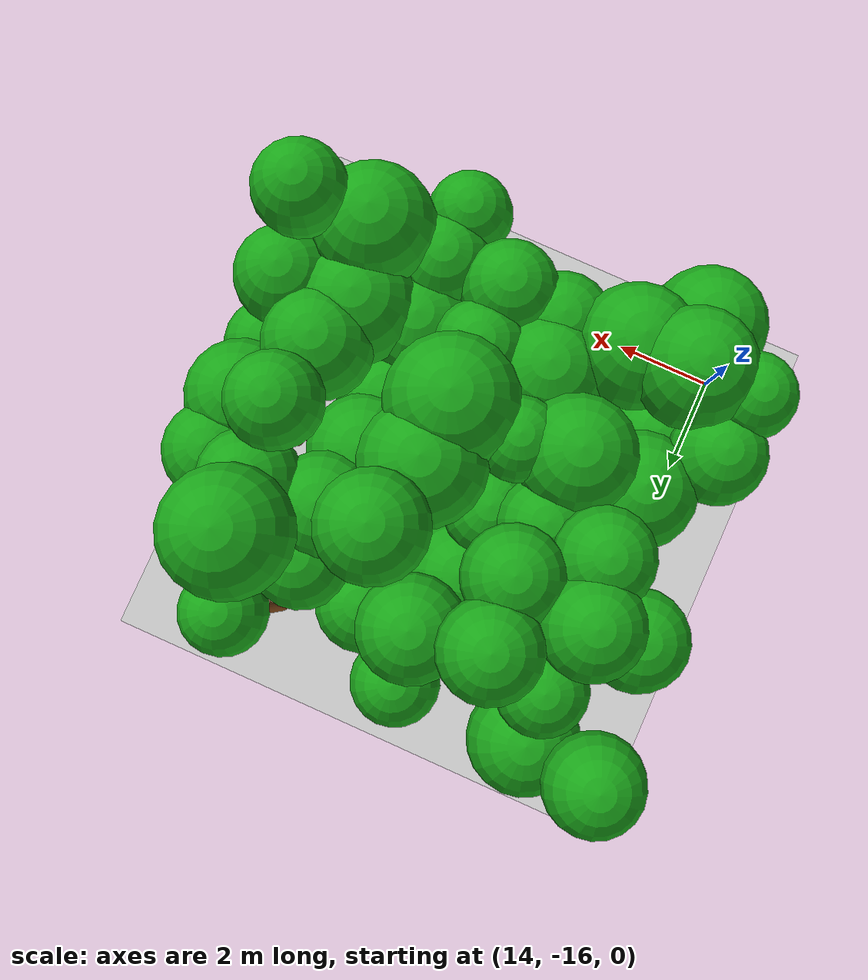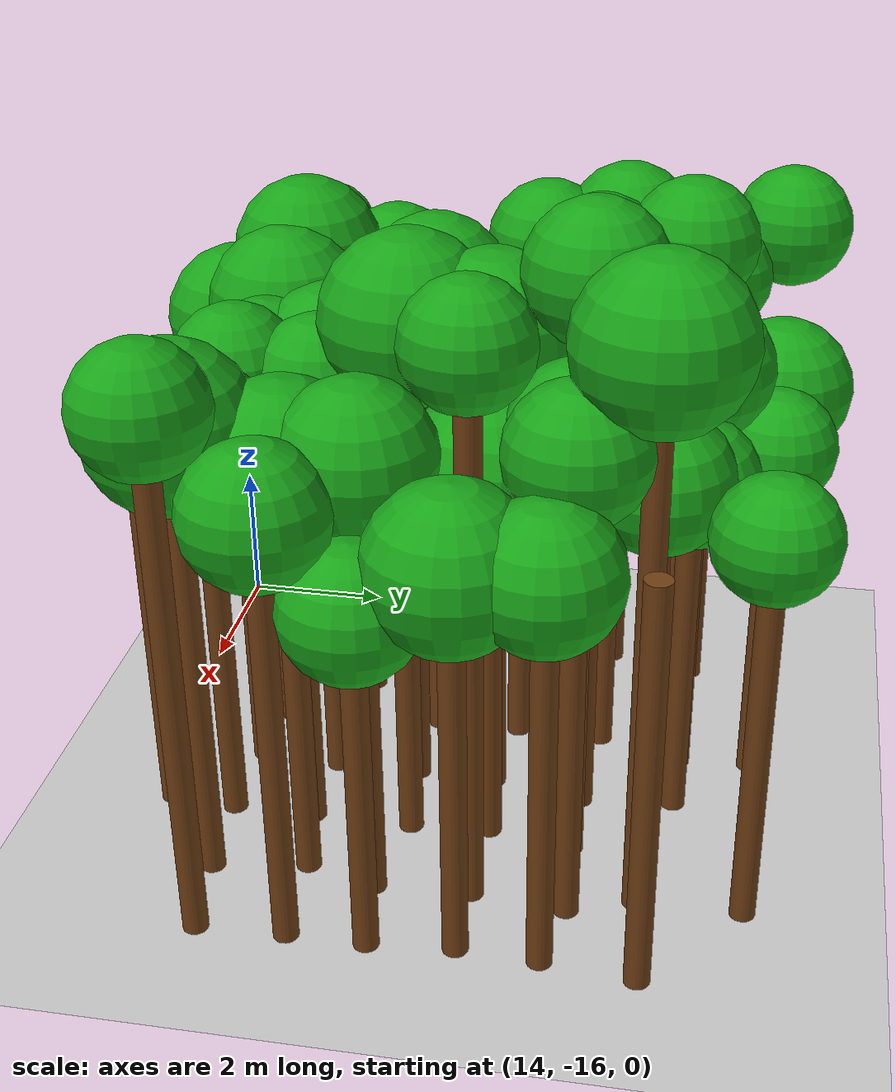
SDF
<sdf version="1.6">
 <world name="forest_world">
  <include><uri>model://sun</uri></include>
  <include><uri>model://ground_plane</uri></include>
  <model name="tree_2191_trunk">
   <static>true</static>
   <pose>14.03 -14.54 2.84 0 0 0</pose>
   <link name="link">
    <collision name="collision">
     <geometry><cylinder><radius>0.16</radius><length>5.68</length></cylinder></geometry>
    </collision>
    <visual name="visual">
     <geometry><cylinder><radius>0.16</radius><length>5.68</length></cylinder></geometry>
     <material><ambient>0.35 0.20 0.05 1</ambient><diffuse>0.45 0.25 0.08 1</diffuse></material>
    </visual>
   </link>
  </model>
  <model name="tree_2191_leaf">
   <static>true</static>
   <pose>14.03 -14.54 6.11 0 0 0</pose>
   <link name="link">
    <collision name="collision"><geometry><sphere><radius>0.72</radius></sphere></geometry></collision>
    <visual name="visual">
     <geometry><sphere><radius>0.72</radius></sphere></geometry>
     <material><ambient>0.05 0.45 0.05 1</ambient><diffuse>0.10 0.65 0.10 1</diffuse></material>
    </visual>
   </link>
  </model>
  <model name="tree_2192_trunk">
   <static>true</static>
   <pose>14.13 -13.49 2.64 0 0 0</pose>
   <link name="link">
    <collision name="collision">
     <geometry><cylinder><radius>0.16</radius><length>5.28</length></cylinder></geometry>
    </collision>
    <visual name="visual">
     <geometry><cylinder><radius>0.16</radius><length>5.28</length></cylinder></geometry>
     <material><ambient>0.35 0.20 0.05 1</ambient><diffuse>0.45 0.25 0.08 1</diffuse></material>
    </visual>
   </link>
  </model>
  <model name="tree_2192_leaf">
   <static>true</static>
   <pose>14.13 -13.49 5.78 0 0 0</pose>
   <link name="link">
    <collision name="collision"><geometry><sphere><radius>0.83</radius></sphere></geometry></collision>
    <visual name="visual">
     <geometry><sphere><radius>0.83</radius></sphere></geometry>
     <material><ambient>0.05 0.45 0.05 1</ambient><diffuse>0.10 0.65 0.10 1</diffuse></material>
    </visual>
   </link>
  </model>
  <model name="tree_2195_trunk">
   <static>true</static>
   <pose>14.17 -10.25 2.77 0 0 0</pose>
   <link name="link">
    <collision name="collision">
     <geometry><cylinder><radius>0.16</radius><length>5.55</length></cylinder></geometry>
    </collision>
    <visual name="visual">
     <geometry><cylinder><radius>0.16</radius><length>5.55</length></cylinder></geometry>
     <material><ambient>0.35 0.20 0.05 1</ambient><diffuse>0.45 0.25 0.08 1</diffuse></material>
    </visual>
   </link>
  </model>
  <model name="tree_2195_leaf">
   <static>true</static>
   <pose>14.17 -10.25 6.05 0 0 0</pose>
   <link name="link">
    <collision name="collision"><geometry><sphere><radius>0.84</radius></sphere></geometry></collision>
    <visual name="visual">
     <geometry><sphere><radius>0.84</radius></sphere></geometry>
     <material><ambient>0.05 0.45 0.05 1</ambient><diffuse>0.10 0.65 0.10 1</diffuse></material>
    </visual>
   </link>
  </model>
  <model name="tree_2197_leaf">
   <static>true</static>
   <pose>14.01 -8.01 6.59 0 0 0</pose>
   <link name="link">
    <collision name="collision"><geometry><sphere><radius>0.81</radius></sphere></geometry></collision>
    <visual name="visual">
     <geometry><sphere><radius>0.81</radius></sphere></geometry>
     <material><ambient>0.05 0.45 0.05 1</ambient><diffuse>0.10 0.65 0.10 1</diffuse></material>
    </visual>
   </link>
  </model>
  <model name="tree_2245_trunk">
   <static>true</static>
   <pose>15.03 -15.58 2.28 0 0 0</pose>
   <link name="link">
    <collision name="collision">
     <geometry><cylinder><radius>0.16</radius><length>4.55</length></cylinder></geometry>
    </collision>
    <visual name="visual">
     <geometry><cylinder><radius>0.16</radius><length>4.55</length></cylinder></geometry>
     <material><ambient>0.35 0.20 0.05 1</ambient><diffuse>0.45 0.25 0.08 1</diffuse></material>
    </visual>
   </link>
  </model>
  <model name="tree_2245_leaf">
   <static>true</static>
   <pose>15.03 -15.58 5.17 0 0 0</pose>
   <link name="link">
    <collision name="collision"><geometry><sphere><radius>1.02</radius></sphere></geometry></collision>
    <visual name="visual">
     <geometry><sphere><radius>1.02</radius></sphere></geometry>
     <material><ambient>0.05 0.45 0.05 1</ambient><diffuse>0.10 0.65 0.10 1</diffuse></material>
    </visual>
   </link>
  </model>
  <model name="tree_2246_trunk">
   <static>true</static>
   <pose>15.04 -14.54 2.80 0 0 0</pose>
   <link name="link">
    <collision name="collision">
     <geometry><cylinder><radius>0.16</radius><length>5.61</length></cylinder></geometry>
    </collision>
    <visual name="visual">
     <geometry><cylinder><radius>0.16</radius><length>5.61</length></cylinder></geometry>
     <material><ambient>0.35 0.20 0.05 1</ambient><diffuse>0.45 0.25 0.08 1</diffuse></material>
    </visual>
   </link>
  </model>
  <model name="tree_2246_leaf">
   <static>true</static>
   <pose>15.04 -14.54 6.22 0 0 0</pose>
   <link name="link">
    <collision name="collision"><geometry><sphere><radius>1.01</radius></sphere></geometry></collision>
    <visual name="visual">
     <geometry><sphere><radius>1.01</radius></sphere></geometry>
     <material><ambient>0.05 0.45 0.05 1</ambient><diffuse>0.10 0.65 0.10 1</diffuse></material>
    </visual>
   </link>
  </model>
  <model name="tree_2247_trunk">
   <static>true</static>
   <pose>15.13 -13.49 2.24 0 0 0</pose>
   <link name="link">
    <collision name="collision">
     <geometry><cylinder><radius>0.16</radius><length>4.48</length></cylinder></geometry>
    </collision>
    <visual name="visual">
     <geometry><cylinder><radius>0.16</radius><length>4.48</length></cylinder></geometry>
     <material><ambient>0.35 0.20 0.05 1</ambient><diffuse>0.45 0.25 0.08 1</diffuse></material>
    </visual>
   </link>
  </model>
  <model name="tree_2247_leaf">
   <static>true</static>
   <pose>15.13 -13.49 5.01 0 0 0</pose>
   <link name="link">
    <collision name="collision"><geometry><sphere><radius>0.88</radius></sphere></geometry></collision>
    <visual name="visual">
     <geometry><sphere><radius>0.88</radius></sphere></geometry>
     <material><ambient>0.05 0.45 0.05 1</ambient><diffuse>0.10 0.65 0.10 1</diffuse></material>
    </visual>
   </link>
  </model>
  <model name="tree_2248_trunk">
   <static>true</static>
   <pose>15.05 -12.49 2.48 0 0 0</pose>
   <link name="link">
    <collision name="collision">
     <geometry><cylinder><radius>0.16</radius><length>4.95</length></cylinder></geometry>
    </collision>
    <visual name="visual">
     <geometry><cylinder><radius>0.16</radius><length>4.95</length></cylinder></geometry>
     <material><ambient>0.35 0.20 0.05 1</ambient><diffuse>0.45 0.25 0.08 1</diffuse></material>
    </visual>
   </link>
  </model>
  <model name="tree_2248_leaf">
   <static>true</static>
   <pose>15.05 -12.49 5.55 0 0 0</pose>
   <link name="link">
    <collision name="collision"><geometry><sphere><radius>1.00</radius></sphere></geometry></collision>
    <visual name="visual">
     <geometry><sphere><radius>1.00</radius></sphere></geometry>
     <material><ambient>0.05 0.45 0.05 1</ambient><diffuse>0.10 0.65 0.10 1</diffuse></material>
    </visual>
   </link>
  </model>
  <model name="tree_2249_trunk">
   <static>true</static>
   <pose>15.21 -11.17 3.05 0 0 0</pose>
   <link name="link">
    <collision name="collision">
     <geometry><cylinder><radius>0.16</radius><length>6.10</length></cylinder></geometry>
    </collision>
    <visual name="visual">
     <geometry><cylinder><radius>0.16</radius><length>6.10</length></cylinder></geometry>
     <material><ambient>0.35 0.20 0.05 1</ambient><diffuse>0.45 0.25 0.08 1</diffuse></material>
    </visual>
   </link>
  </model>
  <model name="tree_2249_leaf">
   <static>true</static>
   <pose>15.21 -11.17 6.60 0 0 0</pose>
   <link name="link">
    <collision name="collision"><geometry><sphere><radius>0.83</radius></sphere></geometry></collision>
    <visual name="visual">
     <geometry><sphere><radius>0.83</radius></sphere></geometry>
     <material><ambient>0.05 0.45 0.05 1</ambient><diffuse>0.10 0.65 0.10 1</diffuse></material>
    </visual>
   </link>
  </model>
  <model name="tree_2250_trunk">
   <static>true</static>
   <pose>14.99 -10.14 3.14 0 0 0</pose>
   <link name="link">
    <collision name="collision">
     <geometry><cylinder><radius>0.16</radius><length>6.29</length></cylinder></geometry>
    </collision>
    <visual name="visual">
     <geometry><cylinder><radius>0.16</radius><length>6.29</length></cylinder></geometry>
     <material><ambient>0.35 0.20 0.05 1</ambient><diffuse>0.45 0.25 0.08 1</diffuse></material>
    </visual>
   </link>
  </model>
  <model name="tree_2250_leaf">
   <static>true</static>
   <pose>14.99 -10.14 6.80 0 0 0</pose>
   <link name="link">
    <collision name="collision"><geometry><sphere><radius>0.85</radius></sphere></geometry></collision>
    <visual name="visual">
     <geometry><sphere><radius>0.85</radius></sphere></geometry>
     <material><ambient>0.05 0.45 0.05 1</ambient><diffuse>0.10 0.65 0.10 1</diffuse></material>
    </visual>
   </link>
  </model>
  <model name="tree_2251_trunk">
   <static>true</static>
   <pose>15.25 -8.96 2.91 0 0 0</pose>
   <link name="link">
    <collision name="collision">
     <geometry><cylinder><radius>0.16</radius><length>5.82</length></cylinder></geometry>
    </collision>
    <visual name="visual">
     <geometry><cylinder><radius>0.16</radius><length>5.82</length></cylinder></geometry>
     <material><ambient>0.35 0.20 0.05 1</ambient><diffuse>0.45 0.25 0.08 1</diffuse></material>
    </visual>
   </link>
  </model>
  <model name="tree_2251_leaf">
   <static>true</static>
   <pose>15.25 -8.96 6.27 0 0 0</pose>
   <link name="link">
    <collision name="collision"><geometry><sphere><radius>0.75</radius></sphere></geometry></collision>
    <visual name="visual">
     <geometry><sphere><radius>0.75</radius></sphere></geometry>
     <material><ambient>0.05 0.45 0.05 1</ambient><diffuse>0.10 0.65 0.10 1</diffuse></material>
    </visual>
   </link>
  </model>
  <model name="tree_2252_trunk">
   <static>true</static>
   <pose>15.05 -7.98 2.04 0 0 0</pose>
   <link name="link">
    <collision name="collision">
     <geometry><cylinder><radius>0.16</radius><length>4.07</length></cylinder></geometry>
    </collision>
    <visual name="visual">
     <geometry><cylinder><radius>0.16</radius><length>4.07</length></cylinder></geometry>
     <material><ambient>0.35 0.20 0.05 1</ambient><diffuse>0.45 0.25 0.08 1</diffuse></material>
    </visual>
   </link>
  </model>
  <model name="tree_2252_leaf">
   <static>true</static>
   <pose>15.05 -7.98 4.65 0 0 0</pose>
   <link name="link">
    <collision name="collision"><geometry><sphere><radius>0.97</radius></sphere></geometry></collision>
    <visual name="visual">
     <geometry><sphere><radius>0.97</radius></sphere></geometry>
     <material><ambient>0.05 0.45 0.05 1</ambient><diffuse>0.10 0.65 0.10 1</diffuse></material>
    </visual>
   </link>
  </model>
  <model name="tree_2301_trunk">
   <static>true</static>
   <pose>16.02 -14.59 2.59 0 0 0</pose>
   <link name="link">
    <collision name="collision">
     <geometry><cylinder><radius>0.16</radius><length>5.18</length></cylinder></geometry>
    </collision>
    <visual name="visual">
     <geometry><cylinder><radius>0.16</radius><length>5.18</length></cylinder></geometry>
     <material><ambient>0.35 0.20 0.05 1</ambient><diffuse>0.45 0.25 0.08 1</diffuse></material>
    </visual>
   </link>
  </model>
  <model name="tree_2301_leaf">
   <static>true</static>
   <pose>16.02 -14.59 5.81 0 0 0</pose>
   <link name="link">
    <collision name="collision"><geometry><sphere><radius>1.05</radius></sphere></geometry></collision>
    <visual name="visual">
     <geometry><sphere><radius>1.05</radius></sphere></geometry>
     <material><ambient>0.05 0.45 0.05 1</ambient><diffuse>0.10 0.65 0.10 1</diffuse></material>
    </visual>
   </link>
  </model>
  <model name="tree_2302_trunk">
   <static>true</static>
   <pose>16.33 -13.49 2.12 0 0 0</pose>
   <link name="link">
    <collision name="collision">
     <geometry><cylinder><radius>0.16</radius><length>4.24</length></cylinder></geometry>
    </collision>
    <visual name="visual">
     <geometry><cylinder><radius>0.16</radius><length>4.24</length></cylinder></geometry>
     <material><ambient>0.35 0.20 0.05 1</ambient><diffuse>0.45 0.25 0.08 1</diffuse></material>
    </visual>
   </link>
  </model>
  <model name="tree_2302_leaf">
   <static>true</static>
   <pose>16.33 -13.49 4.66 0 0 0</pose>
   <link name="link">
    <collision name="collision"><geometry><sphere><radius>0.70</radius></sphere></geometry></collision>
    <visual name="visual">
     <geometry><sphere><radius>0.70</radius></sphere></geometry>
     <material><ambient>0.05 0.45 0.05 1</ambient><diffuse>0.10 0.65 0.10 1</diffuse></material>
    </visual>
   </link>
  </model>
  <model name="tree_2303_trunk">
   <static>true</static>
   <pose>16.21 -12.51 2.83 0 0 0</pose>
   <link name="link">
    <collision name="collision">
     <geometry><cylinder><radius>0.16</radius><length>5.66</length></cylinder></geometry>
    </collision>
    <visual name="visual">
     <geometry><cylinder><radius>0.16</radius><length>5.66</length></cylinder></geometry>
     <material><ambient>0.35 0.20 0.05 1</ambient><diffuse>0.45 0.25 0.08 1</diffuse></material>
    </visual>
   </link>
  </model>
  <model name="tree_2303_leaf">
   <static>true</static>
   <pose>16.21 -12.51 6.25 0 0 0</pose>
   <link name="link">
    <collision name="collision"><geometry><sphere><radius>0.99</radius></sphere></geometry></collision>
    <visual name="visual">
     <geometry><sphere><radius>0.99</radius></sphere></geometry>
     <material><ambient>0.05 0.45 0.05 1</ambient><diffuse>0.10 0.65 0.10 1</diffuse></material>
    </visual>
   </link>
  </model>
  <model name="tree_2304_trunk">
   <static>true</static>
   <pose>16.22 -11.32 2.73 0 0 0</pose>
   <link name="link">
    <collision name="collision">
     <geometry><cylinder><radius>0.16</radius><length>5.47</length></cylinder></geometry>
    </collision>
    <visual name="visual">
     <geometry><cylinder><radius>0.16</radius><length>5.47</length></cylinder></geometry>
     <material><ambient>0.35 0.20 0.05 1</ambient><diffuse>0.45 0.25 0.08 1</diffuse></material>
    </visual>
   </link>
  </model>
  <model name="tree_2304_leaf">
   <static>true</static>
   <pose>16.22 -11.32 5.94 0 0 0</pose>
   <link name="link">
    <collision name="collision"><geometry><sphere><radius>0.80</radius></sphere></geometry></collision>
    <visual name="visual">
     <geometry><sphere><radius>0.80</radius></sphere></geometry>
     <material><ambient>0.05 0.45 0.05 1</ambient><diffuse>0.10 0.65 0.10 1</diffuse></material>
    </visual>
   </link>
  </model>
  <model name="tree_2305_trunk">
   <static>true</static>
   <pose>16.37 -10.35 3.18 0 0 0</pose>
   <link name="link">
    <collision name="collision">
     <geometry><cylinder><radius>0.16</radius><length>6.35</length></cylinder></geometry>
    </collision>
    <visual name="visual">
     <geometry><cylinder><radius>0.16</radius><length>6.35</length></cylinder></geometry>
     <material><ambient>0.35 0.20 0.05 1</ambient><diffuse>0.45 0.25 0.08 1</diffuse></material>
    </visual>
   </link>
  </model>
  <model name="tree_2305_leaf">
   <static>true</static>
   <pose>16.37 -10.35 6.85 0 0 0</pose>
   <link name="link">
    <collision name="collision"><geometry><sphere><radius>0.82</radius></sphere></geometry></collision>
    <visual name="visual">
     <geometry><sphere><radius>0.82</radius></sphere></geometry>
     <material><ambient>0.05 0.45 0.05 1</ambient><diffuse>0.10 0.65 0.10 1</diffuse></material>
    </visual>
   </link>
  </model>
  <model name="tree_2306_trunk">
   <static>true</static>
   <pose>16.25 -9.22 3.29 0 0 0</pose>
   <link name="link">
    <collision name="collision">
     <geometry><cylinder><radius>0.16</radius><length>6.58</length></cylinder></geometry>
    </collision>
    <visual name="visual">
     <geometry><cylinder><radius>0.16</radius><length>6.58</length></cylinder></geometry>
     <material><ambient>0.35 0.20 0.05 1</ambient><diffuse>0.45 0.25 0.08 1</diffuse></material>
    </visual>
   </link>
  </model>
  <model name="tree_2306_leaf">
   <static>true</static>
   <pose>16.25 -9.22 7.08 0 0 0</pose>
   <link name="link">
    <collision name="collision"><geometry><sphere><radius>0.83</radius></sphere></geometry></collision>
    <visual name="visual">
     <geometry><sphere><radius>0.83</radius></sphere></geometry>
     <material><ambient>0.05 0.45 0.05 1</ambient><diffuse>0.10 0.65 0.10 1</diffuse></material>
    </visual>
   </link>
  </model>
  <model name="tree_2356_trunk">
   <static>true</static>
   <pose>17.29 -14.52 2.48 0 0 0</pose>
   <link name="link">
    <collision name="collision">
     <geometry><cylinder><radius>0.16</radius><length>4.96</length></cylinder></geometry>
    </collision>
    <visual name="visual">
     <geometry><cylinder><radius>0.16</radius><length>4.96</length></cylinder></geometry>
     <material><ambient>0.35 0.20 0.05 1</ambient><diffuse>0.45 0.25 0.08 1</diffuse></material>
    </visual>
   </link>
  </model>
  <model name="tree_2356_leaf">
   <static>true</static>
   <pose>17.29 -14.52 5.48 0 0 0</pose>
   <link name="link">
    <collision name="collision"><geometry><sphere><radius>0.88</radius></sphere></geometry></collision>
    <visual name="visual">
     <geometry><sphere><radius>0.88</radius></sphere></geometry>
     <material><ambient>0.05 0.45 0.05 1</ambient><diffuse>0.10 0.65 0.10 1</diffuse></material>
    </visual>
   </link>
  </model>
  <model name="tree_2357_trunk">
   <static>true</static>
   <pose>17.18 -13.66 2.48 0 0 0</pose>
   <link name="link">
    <collision name="collision">
     <geometry><cylinder><radius>0.16</radius><length>4.97</length></cylinder></geometry>
    </collision>
    <visual name="visual">
     <geometry><cylinder><radius>0.16</radius><length>4.97</length></cylinder></geometry>
     <material><ambient>0.35 0.20 0.05 1</ambient><diffuse>0.45 0.25 0.08 1</diffuse></material>
    </visual>
   </link>
  </model>
  <model name="tree_2357_leaf">
   <static>true</static>
   <pose>17.18 -13.66 5.57 0 0 0</pose>
   <link name="link">
    <collision name="collision"><geometry><sphere><radius>1.01</radius></sphere></geometry></collision>
    <visual name="visual">
     <geometry><sphere><radius>1.01</radius></sphere></geometry>
     <material><ambient>0.05 0.45 0.05 1</ambient><diffuse>0.10 0.65 0.10 1</diffuse></material>
    </visual>
   </link>
  </model>
  <model name="tree_2358_trunk">
   <static>true</static>
   <pose>17.14 -12.35 2.99 0 0 0</pose>
   <link name="link">
    <collision name="collision">
     <geometry><cylinder><radius>0.16</radius><length>5.98</length></cylinder></geometry>
    </collision>
    <visual name="visual">
     <geometry><cylinder><radius>0.16</radius><length>5.98</length></cylinder></geometry>
     <material><ambient>0.35 0.20 0.05 1</ambient><diffuse>0.45 0.25 0.08 1</diffuse></material>
    </visual>
   </link>
  </model>
  <model name="tree_2358_leaf">
   <static>true</static>
   <pose>17.14 -12.35 6.40 0 0 0</pose>
   <link name="link">
    <collision name="collision"><geometry><sphere><radius>0.70</radius></sphere></geometry></collision>
    <visual name="visual">
     <geometry><sphere><radius>0.70</radius></sphere></geometry>
     <material><ambient>0.05 0.45 0.05 1</ambient><diffuse>0.10 0.65 0.10 1</diffuse></material>
    </visual>
   </link>
  </model>
  <model name="tree_2359_trunk">
   <static>true</static>
   <pose>17.12 -11.23 2.46 0 0 0</pose>
   <link name="link">
    <collision name="collision">
     <geometry><cylinder><radius>0.16</radius><length>4.91</length></cylinder></geometry>
    </collision>
    <visual name="visual">
     <geometry><cylinder><radius>0.16</radius><length>4.91</length></cylinder></geometry>
     <material><ambient>0.35 0.20 0.05 1</ambient><diffuse>0.45 0.25 0.08 1</diffuse></material>
    </visual>
   </link>
  </model>
  <model name="tree_2359_leaf">
   <static>true</static>
   <pose>17.12 -11.23 5.39 0 0 0</pose>
   <link name="link">
    <collision name="collision"><geometry><sphere><radius>0.79</radius></sphere></geometry></collision>
    <visual name="visual">
     <geometry><sphere><radius>0.79</radius></sphere></geometry>
     <material><ambient>0.05 0.45 0.05 1</ambient><diffuse>0.10 0.65 0.10 1</diffuse></material>
    </visual>
   </link>
  </model>
  <model name="tree_2360_trunk">
   <static>true</static>
   <pose>17.12 -10.07 2.02 0 0 0</pose>
   <link name="link">
    <collision name="collision">
     <geometry><cylinder><radius>0.16</radius><length>4.04</length></cylinder></geometry>
    </collision>
    <visual name="visual">
     <geometry><cylinder><radius>0.16</radius><length>4.04</length></cylinder></geometry>
     <material><ambient>0.35 0.20 0.05 1</ambient><diffuse>0.45 0.25 0.08 1</diffuse></material>
    </visual>
   </link>
  </model>
  <model name="tree_2360_leaf">
   <static>true</static>
   <pose>17.12 -10.07 4.63 0 0 0</pose>
   <link name="link">
    <collision name="collision"><geometry><sphere><radius>0.99</radius></sphere></geometry></collision>
    <visual name="visual">
     <geometry><sphere><radius>0.99</radius></sphere></geometry>
     <material><ambient>0.05 0.45 0.05 1</ambient><diffuse>0.10 0.65 0.10 1</diffuse></material>
    </visual>
   </link>
  </model>
  <model name="tree_2361_trunk">
   <static>true</static>
   <pose>17.48 -8.96 2.70 0 0 0</pose>
   <link name="link">
    <collision name="collision">
     <geometry><cylinder><radius>0.16</radius><length>5.40</length></cylinder></geometry>
    </collision>
    <visual name="visual">
     <geometry><cylinder><radius>0.16</radius><length>5.40</length></cylinder></geometry>
     <material><ambient>0.35 0.20 0.05 1</ambient><diffuse>0.45 0.25 0.08 1</diffuse></material>
    </visual>
   </link>
  </model>
  <model name="tree_2361_leaf">
   <static>true</static>
   <pose>17.48 -8.96 5.93 0 0 0</pose>
   <link name="link">
    <collision name="collision"><geometry><sphere><radius>0.90</radius></sphere></geometry></collision>
    <visual name="visual">
     <geometry><sphere><radius>0.90</radius></sphere></geometry>
     <material><ambient>0.05 0.45 0.05 1</ambient><diffuse>0.10 0.65 0.10 1</diffuse></material>
    </visual>
   </link>
  </model>
  <model name="tree_2362_trunk">
   <static>true</static>
   <pose>17.40 -7.99 2.22 0 0 0</pose>
   <link name="link">
    <collision name="collision">
     <geometry><cylinder><radius>0.16</radius><length>4.44</length></cylinder></geometry>
    </collision>
    <visual name="visual">
     <geometry><cylinder><radius>0.16</radius><length>4.44</length></cylinder></geometry>
     <material><ambient>0.35 0.20 0.05 1</ambient><diffuse>0.45 0.25 0.08 1</diffuse></material>
    </visual>
   </link>
  </model>
  <model name="tree_2362_leaf">
   <static>true</static>
   <pose>17.40 -7.99 4.90 0 0 0</pose>
   <link name="link">
    <collision name="collision"><geometry><sphere><radius>0.76</radius></sphere></geometry></collision>
    <visual name="visual">
     <geometry><sphere><radius>0.76</radius></sphere></geometry>
     <material><ambient>0.05 0.45 0.05 1</ambient><diffuse>0.10 0.65 0.10 1</diffuse></material>
    </visual>
   </link>
  </model>
  <model name="tree_2411_trunk">
   <static>true</static>
   <pose>18.27 -14.61 2.68 0 0 0</pose>
   <link name="link">
    <collision name="collision">
     <geometry><cylinder><radius>0.16</radius><length>5.37</length></cylinder></geometry>
    </collision>
    <visual name="visual">
     <geometry><cylinder><radius>0.16</radius><length>5.37</length></cylinder></geometry>
     <material><ambient>0.35 0.20 0.05 1</ambient><diffuse>0.45 0.25 0.08 1</diffuse></material>
    </visual>
   </link>
  </model>
  <model name="tree_2411_leaf">
   <static>true</static>
   <pose>18.27 -14.61 5.86 0 0 0</pose>
   <link name="link">
    <collision name="collision"><geometry><sphere><radius>0.82</radius></sphere></geometry></collision>
    <visual name="visual">
     <geometry><sphere><radius>0.82</radius></sphere></geometry>
     <material><ambient>0.05 0.45 0.05 1</ambient><diffuse>0.10 0.65 0.10 1</diffuse></material>
    </visual>
   </link>
  </model>
  <model name="tree_2412_trunk">
   <static>true</static>
   <pose>18.33 -13.54 2.68 0 0 0</pose>
   <link name="link">
    <collision name="collision">
     <geometry><cylinder><radius>0.16</radius><length>5.37</length></cylinder></geometry>
    </collision>
    <visual name="visual">
     <geometry><cylinder><radius>0.16</radius><length>5.37</length></cylinder></geometry>
     <material><ambient>0.35 0.20 0.05 1</ambient><diffuse>0.45 0.25 0.08 1</diffuse></material>
    </visual>
   </link>
  </model>
  <model name="tree_2412_leaf">
   <static>true</static>
   <pose>18.33 -13.54 5.84 0 0 0</pose>
   <link name="link">
    <collision name="collision"><geometry><sphere><radius>0.80</radius></sphere></geometry></collision>
    <visual name="visual">
     <geometry><sphere><radius>0.80</radius></sphere></geometry>
     <material><ambient>0.05 0.45 0.05 1</ambient><diffuse>0.10 0.65 0.10 1</diffuse></material>
    </visual>
   </link>
  </model>
  <model name="tree_2413_trunk">
   <static>true</static>
   <pose>18.31 -12.42 3.01 0 0 0</pose>
   <link name="link">
    <collision name="collision">
     <geometry><cylinder><radius>0.16</radius><length>6.03</length></cylinder></geometry>
    </collision>
    <visual name="visual">
     <geometry><cylinder><radius>0.16</radius><length>6.03</length></cylinder></geometry>
     <material><ambient>0.35 0.20 0.05 1</ambient><diffuse>0.45 0.25 0.08 1</diffuse></material>
    </visual>
   </link>
  </model>
  <model name="tree_2413_leaf">
   <static>true</static>
   <pose>18.31 -12.42 6.68 0 0 0</pose>
   <link name="link">
    <collision name="collision"><geometry><sphere><radius>1.09</radius></sphere></geometry></collision>
    <visual name="visual">
     <geometry><sphere><radius>1.09</radius></sphere></geometry>
     <material><ambient>0.05 0.45 0.05 1</ambient><diffuse>0.10 0.65 0.10 1</diffuse></material>
    </visual>
   </link>
  </model>
  <model name="tree_2414_trunk">
   <static>true</static>
   <pose>18.34 -11.38 2.97 0 0 0</pose>
   <link name="link">
    <collision name="collision">
     <geometry><cylinder><radius>0.16</radius><length>5.94</length></cylinder></geometry>
    </collision>
    <visual name="visual">
     <geometry><cylinder><radius>0.16</radius><length>5.94</length></cylinder></geometry>
     <material><ambient>0.35 0.20 0.05 1</ambient><diffuse>0.45 0.25 0.08 1</diffuse></material>
    </visual>
   </link>
  </model>
  <model name="tree_2414_leaf">
   <static>true</static>
   <pose>18.34 -11.38 6.57 0 0 0</pose>
   <link name="link">
    <collision name="collision"><geometry><sphere><radius>1.04</radius></sphere></geometry></collision>
    <visual name="visual">
     <geometry><sphere><radius>1.04</radius></sphere></geometry>
     <material><ambient>0.05 0.45 0.05 1</ambient><diffuse>0.10 0.65 0.10 1</diffuse></material>
    </visual>
   </link>
  </model>
  <model name="tree_2415_trunk">
   <static>true</static>
   <pose>18.55 -10.17 3.48 0 0 0</pose>
   <link name="link">
    <collision name="collision">
     <geometry><cylinder><radius>0.16</radius><length>6.96</length></cylinder></geometry>
    </collision>
    <visual name="visual">
     <geometry><cylinder><radius>0.16</radius><length>6.96</length></cylinder></geometry>
     <material><ambient>0.35 0.20 0.05 1</ambient><diffuse>0.45 0.25 0.08 1</diffuse></material>
    </visual>
   </link>
  </model>
  <model name="tree_2415_leaf">
   <static>true</static>
   <pose>18.55 -10.17 7.49 0 0 0</pose>
   <link name="link">
    <collision name="collision"><geometry><sphere><radius>0.88</radius></sphere></geometry></collision>
    <visual name="visual">
     <geometry><sphere><radius>0.88</radius></sphere></geometry>
     <material><ambient>0.05 0.45 0.05 1</ambient><diffuse>0.10 0.65 0.10 1</diffuse></material>
    </visual>
   </link>
  </model>
  <model name="tree_2416_trunk">
   <static>true</static>
   <pose>18.41 -8.95 2.19 0 0 0</pose>
   <link name="link">
    <collision name="collision">
     <geometry><cylinder><radius>0.16</radius><length>4.38</length></cylinder></geometry>
    </collision>
    <visual name="visual">
     <geometry><cylinder><radius>0.16</radius><length>4.38</length></cylinder></geometry>
     <material><ambient>0.35 0.20 0.05 1</ambient><diffuse>0.45 0.25 0.08 1</diffuse></material>
    </visual>
   </link>
  </model>
  <model name="tree_2416_leaf">
   <static>true</static>
   <pose>18.41 -8.95 4.87 0 0 0</pose>
   <link name="link">
    <collision name="collision"><geometry><sphere><radius>0.83</radius></sphere></geometry></collision>
    <visual name="visual">
     <geometry><sphere><radius>0.83</radius></sphere></geometry>
     <material><ambient>0.05 0.45 0.05 1</ambient><diffuse>0.10 0.65 0.10 1</diffuse></material>
    </visual>
   </link>
  </model>
  <model name="tree_2465_trunk">
   <static>true</static>
   <pose>19.40 -15.55 2.62 0 0 0</pose>
   <link name="link">
    <collision name="collision">
     <geometry><cylinder><radius>0.16</radius><length>5.24</length></cylinder></geometry>
    </collision>
    <visual name="visual">
     <geometry><cylinder><radius>0.16</radius><length>5.24</length></cylinder></geometry>
     <material><ambient>0.35 0.20 0.05 1</ambient><diffuse>0.45 0.25 0.08 1</diffuse></material>
    </visual>
   </link>
  </model>
  <model name="tree_2465_leaf">
   <static>true</static>
   <pose>19.40 -15.55 5.67 0 0 0</pose>
   <link name="link">
    <collision name="collision"><geometry><sphere><radius>0.72</radius></sphere></geometry></collision>
    <visual name="visual">
     <geometry><sphere><radius>0.72</radius></sphere></geometry>
     <material><ambient>0.05 0.45 0.05 1</ambient><diffuse>0.10 0.65 0.10 1</diffuse></material>
    </visual>
   </link>
  </model>
  <model name="tree_2466_trunk">
   <static>true</static>
   <pose>19.47 -14.67 2.57 0 0 0</pose>
   <link name="link">
    <collision name="collision">
     <geometry><cylinder><radius>0.16</radius><length>5.14</length></cylinder></geometry>
    </collision>
    <visual name="visual">
     <geometry><cylinder><radius>0.16</radius><length>5.14</length></cylinder></geometry>
     <material><ambient>0.35 0.20 0.05 1</ambient><diffuse>0.45 0.25 0.08 1</diffuse></material>
    </visual>
   </link>
  </model>
  <model name="tree_2466_leaf">
   <static>true</static>
   <pose>19.47 -14.67 5.63 0 0 0</pose>
   <link name="link">
    <collision name="collision"><geometry><sphere><radius>0.81</radius></sphere></geometry></collision>
    <visual name="visual">
     <geometry><sphere><radius>0.81</radius></sphere></geometry>
     <material><ambient>0.05 0.45 0.05 1</ambient><diffuse>0.10 0.65 0.10 1</diffuse></material>
    </visual>
   </link>
  </model>
  <model name="tree_2467_trunk">
   <static>true</static>
   <pose>19.47 -13.59 2.35 0 0 0</pose>
   <link name="link">
    <collision name="collision">
     <geometry><cylinder><radius>0.16</radius><length>4.69</length></cylinder></geometry>
    </collision>
    <visual name="visual">
     <geometry><cylinder><radius>0.16</radius><length>4.69</length></cylinder></geometry>
     <material><ambient>0.35 0.20 0.05 1</ambient><diffuse>0.45 0.25 0.08 1</diffuse></material>
    </visual>
   </link>
  </model>
  <model name="tree_2467_leaf">
   <static>true</static>
   <pose>19.47 -13.59 5.27 0 0 0</pose>
   <link name="link">
    <collision name="collision"><geometry><sphere><radius>0.96</radius></sphere></geometry></collision>
    <visual name="visual">
     <geometry><sphere><radius>0.96</radius></sphere></geometry>
     <material><ambient>0.05 0.45 0.05 1</ambient><diffuse>0.10 0.65 0.10 1</diffuse></material>
    </visual>
   </link>
  </model>
  <model name="tree_2468_trunk">
   <static>true</static>
   <pose>19.46 -12.28 2.15 0 0 0</pose>
   <link name="link">
    <collision name="collision">
     <geometry><cylinder><radius>0.16</radius><length>4.30</length></cylinder></geometry>
    </collision>
    <visual name="visual">
     <geometry><cylinder><radius>0.16</radius><length>4.30</length></cylinder></geometry>
     <material><ambient>0.35 0.20 0.05 1</ambient><diffuse>0.45 0.25 0.08 1</diffuse></material>
    </visual>
   </link>
  </model>
  <model name="tree_2468_leaf">
   <static>true</static>
   <pose>19.46 -12.28 4.85 0 0 0</pose>
   <link name="link">
    <collision name="collision"><geometry><sphere><radius>0.92</radius></sphere></geometry></collision>
    <visual name="visual">
     <geometry><sphere><radius>0.92</radius></sphere></geometry>
     <material><ambient>0.05 0.45 0.05 1</ambient><diffuse>0.10 0.65 0.10 1</diffuse></material>
    </visual>
   </link>
  </model>
  <model name="tree_2469_trunk">
   <static>true</static>
   <pose>19.38 -11.26 2.37 0 0 0</pose>
   <link name="link">
    <collision name="collision">
     <geometry><cylinder><radius>0.16</radius><length>4.73</length></cylinder></geometry>
    </collision>
    <visual name="visual">
     <geometry><cylinder><radius>0.16</radius><length>4.73</length></cylinder></geometry>
     <material><ambient>0.35 0.20 0.05 1</ambient><diffuse>0.45 0.25 0.08 1</diffuse></material>
    </visual>
   </link>
  </model>
  <model name="tree_2469_leaf">
   <static>true</static>
   <pose>19.38 -11.26 5.33 0 0 0</pose>
   <link name="link">
    <collision name="collision"><geometry><sphere><radius>1.00</radius></sphere></geometry></collision>
    <visual name="visual">
     <geometry><sphere><radius>1.00</radius></sphere></geometry>
     <material><ambient>0.05 0.45 0.05 1</ambient><diffuse>0.10 0.65 0.10 1</diffuse></material>
    </visual>
   </link>
  </model>
  <model name="tree_2470_trunk">
   <static>true</static>
   <pose>19.55 -10.17 2.70 0 0 0</pose>
   <link name="link">
    <collision name="collision">
     <geometry><cylinder><radius>0.16</radius><length>5.40</length></cylinder></geometry>
    </collision>
    <visual name="visual">
     <geometry><cylinder><radius>0.16</radius><length>5.40</length></cylinder></geometry>
     <material><ambient>0.35 0.20 0.05 1</ambient><diffuse>0.45 0.25 0.08 1</diffuse></material>
    </visual>
   </link>
  </model>
  <model name="tree_2470_leaf">
   <static>true</static>
   <pose>19.55 -10.17 5.94 0 0 0</pose>
   <link name="link">
    <collision name="collision"><geometry><sphere><radius>0.90</radius></sphere></geometry></collision>
    <visual name="visual">
     <geometry><sphere><radius>0.90</radius></sphere></geometry>
     <material><ambient>0.05 0.45 0.05 1</ambient><diffuse>0.10 0.65 0.10 1</diffuse></material>
    </visual>
   </link>
  </model>
  <model name="tree_2471_trunk">
   <static>true</static>
   <pose>19.61 -9.26 2.48 0 0 0</pose>
   <link name="link">
    <collision name="collision">
     <geometry><cylinder><radius>0.16</radius><length>4.95</length></cylinder></geometry>
    </collision>
    <visual name="visual">
     <geometry><cylinder><radius>0.16</radius><length>4.95</length></cylinder></geometry>
     <material><ambient>0.35 0.20 0.05 1</ambient><diffuse>0.45 0.25 0.08 1</diffuse></material>
    </visual>
   </link>
  </model>
  <model name="tree_2471_leaf">
   <static>true</static>
   <pose>19.61 -9.26 5.47 0 0 0</pose>
   <link name="link">
    <collision name="collision"><geometry><sphere><radius>0.87</radius></sphere></geometry></collision>
    <visual name="visual">
     <geometry><sphere><radius>0.87</radius></sphere></geometry>
     <material><ambient>0.05 0.45 0.05 1</ambient><diffuse>0.10 0.65 0.10 1</diffuse></material>
    </visual>
   </link>
  </model>
  <model name="tree_2521_trunk">
   <static>true</static>
   <pose>20.66 -14.60 2.79 0 0 0</pose>
   <link name="link">
    <collision name="collision">
     <geometry><cylinder><radius>0.16</radius><length>5.58</length></cylinder></geometry>
    </collision>
    <visual name="visual">
     <geometry><cylinder><radius>0.16</radius><length>5.58</length></cylinder></geometry>
     <material><ambient>0.35 0.20 0.05 1</ambient><diffuse>0.45 0.25 0.08 1</diffuse></material>
    </visual>
   </link>
  </model>
  <model name="tree_2521_leaf">
   <static>true</static>
   <pose>20.66 -14.60 6.19 0 0 0</pose>
   <link name="link">
    <collision name="collision"><geometry><sphere><radius>1.02</radius></sphere></geometry></collision>
    <visual name="visual">
     <geometry><sphere><radius>1.02</radius></sphere></geometry>
     <material><ambient>0.05 0.45 0.05 1</ambient><diffuse>0.10 0.65 0.10 1</diffuse></material>
    </visual>
   </link>
  </model>
  <model name="tree_2522_trunk">
   <static>true</static>
   <pose>20.45 -13.40 2.58 0 0 0</pose>
   <link name="link">
    <collision name="collision">
     <geometry><cylinder><radius>0.16</radius><length>5.16</length></cylinder></geometry>
    </collision>
    <visual name="visual">
     <geometry><cylinder><radius>0.16</radius><length>5.16</length></cylinder></geometry>
     <material><ambient>0.35 0.20 0.05 1</ambient><diffuse>0.45 0.25 0.08 1</diffuse></material>
    </visual>
   </link>
  </model>
  <model name="tree_2522_leaf">
   <static>true</static>
   <pose>20.45 -13.40 5.76 0 0 0</pose>
   <link name="link">
    <collision name="collision"><geometry><sphere><radius>1.01</radius></sphere></geometry></collision>
    <visual name="visual">
     <geometry><sphere><radius>1.01</radius></sphere></geometry>
     <material><ambient>0.05 0.45 0.05 1</ambient><diffuse>0.10 0.65 0.10 1</diffuse></material>
    </visual>
   </link>
  </model>
  <model name="tree_2523_trunk">
   <static>true</static>
   <pose>20.71 -12.49 2.74 0 0 0</pose>
   <link name="link">
    <collision name="collision">
     <geometry><cylinder><radius>0.16</radius><length>5.47</length></cylinder></geometry>
    </collision>
    <visual name="visual">
     <geometry><cylinder><radius>0.16</radius><length>5.47</length></cylinder></geometry>
     <material><ambient>0.35 0.20 0.05 1</ambient><diffuse>0.45 0.25 0.08 1</diffuse></material>
    </visual>
   </link>
  </model>
  <model name="tree_2523_leaf">
   <static>true</static>
   <pose>20.71 -12.49 6.03 0 0 0</pose>
   <link name="link">
    <collision name="collision"><geometry><sphere><radius>0.93</radius></sphere></geometry></collision>
    <visual name="visual">
     <geometry><sphere><radius>0.93</radius></sphere></geometry>
     <material><ambient>0.05 0.45 0.05 1</ambient><diffuse>0.10 0.65 0.10 1</diffuse></material>
    </visual>
   </link>
  </model>
  <model name="tree_2524_trunk">
   <static>true</static>
   <pose>20.63 -11.27 3.48 0 0 0</pose>
   <link name="link">
    <collision name="collision">
     <geometry><cylinder><radius>0.16</radius><length>6.95</length></cylinder></geometry>
    </collision>
    <visual name="visual">
     <geometry><cylinder><radius>0.16</radius><length>6.95</length></cylinder></geometry>
     <material><ambient>0.35 0.20 0.05 1</ambient><diffuse>0.45 0.25 0.08 1</diffuse></material>
    </visual>
   </link>
  </model>
  <model name="tree_2524_leaf">
   <static>true</static>
   <pose>20.63 -11.27 7.41 0 0 0</pose>
   <link name="link">
    <collision name="collision"><geometry><sphere><radius>0.76</radius></sphere></geometry></collision>
    <visual name="visual">
     <geometry><sphere><radius>0.76</radius></sphere></geometry>
     <material><ambient>0.05 0.45 0.05 1</ambient><diffuse>0.10 0.65 0.10 1</diffuse></material>
    </visual>
   </link>
  </model>
  <model name="tree_2525_trunk">
   <static>true</static>
   <pose>20.73 -10.07 2.89 0 0 0</pose>
   <link name="link">
    <collision name="collision">
     <geometry><cylinder><radius>0.16</radius><length>5.78</length></cylinder></geometry>
    </collision>
    <visual name="visual">
     <geometry><cylinder><radius>0.16</radius><length>5.78</length></cylinder></geometry>
     <material><ambient>0.35 0.20 0.05 1</ambient><diffuse>0.45 0.25 0.08 1</diffuse></material>
    </visual>
   </link>
  </model>
  <model name="tree_2525_leaf">
   <static>true</static>
   <pose>20.73 -10.07 6.29 0 0 0</pose>
   <link name="link">
    <collision name="collision"><geometry><sphere><radius>0.84</radius></sphere></geometry></collision>
    <visual name="visual">
     <geometry><sphere><radius>0.84</radius></sphere></geometry>
     <material><ambient>0.05 0.45 0.05 1</ambient><diffuse>0.10 0.65 0.10 1</diffuse></material>
    </visual>
   </link>
  </model>
  <model name="tree_2526_trunk">
   <static>true</static>
   <pose>20.43 -9.25 3.43 0 0 0</pose>
   <link name="link">
    <collision name="collision">
     <geometry><cylinder><radius>0.16</radius><length>6.87</length></cylinder></geometry>
    </collision>
    <visual name="visual">
     <geometry><cylinder><radius>0.16</radius><length>6.87</length></cylinder></geometry>
     <material><ambient>0.35 0.20 0.05 1</ambient><diffuse>0.45 0.25 0.08 1</diffuse></material>
    </visual>
   </link>
  </model>
  <model name="tree_2526_leaf">
   <static>true</static>
   <pose>20.43 -9.25 7.48 0 0 0</pose>
   <link name="link">
    <collision name="collision"><geometry><sphere><radius>1.02</radius></sphere></geometry></collision>
    <visual name="visual">
     <geometry><sphere><radius>1.02</radius></sphere></geometry>
     <material><ambient>0.05 0.45 0.05 1</ambient><diffuse>0.10 0.65 0.10 1</diffuse></material>
    </visual>
   </link>
  </model>
  <model name="tree_2527_trunk">
   <static>true</static>
   <pose>20.42 -7.93 2.43 0 0 0</pose>
   <link name="link">
    <collision name="collision">
     <geometry><cylinder><radius>0.16</radius><length>4.85</length></cylinder></geometry>
    </collision>
    <visual name="visual">
     <geometry><cylinder><radius>0.16</radius><length>4.85</length></cylinder></geometry>
     <material><ambient>0.35 0.20 0.05 1</ambient><diffuse>0.45 0.25 0.08 1</diffuse></material>
    </visual>
   </link>
  </model>
  <model name="tree_2527_leaf">
   <static>true</static>
   <pose>20.42 -7.93 5.30 0 0 0</pose>
   <link name="link">
    <collision name="collision"><geometry><sphere><radius>0.75</radius></sphere></geometry></collision>
    <visual name="visual">
     <geometry><sphere><radius>0.75</radius></sphere></geometry>
     <material><ambient>0.05 0.45 0.05 1</ambient><diffuse>0.10 0.65 0.10 1</diffuse></material>
    </visual>
   </link>
  </model>
  <model name="tree_2576_trunk">
   <static>true</static>
   <pose>21.78 -14.46 3.24 0 0 0</pose>
   <link name="link">
    <collision name="collision">
     <geometry><cylinder><radius>0.16</radius><length>6.48</length></cylinder></geometry>
    </collision>
    <visual name="visual">
     <geometry><cylinder><radius>0.16</radius><length>6.48</length></cylinder></geometry>
     <material><ambient>0.35 0.20 0.05 1</ambient><diffuse>0.45 0.25 0.08 1</diffuse></material>
    </visual>
   </link>
  </model>
  <model name="tree_2576_leaf">
   <static>true</static>
   <pose>21.78 -14.46 6.94 0 0 0</pose>
   <link name="link">
    <collision name="collision"><geometry><sphere><radius>0.77</radius></sphere></geometry></collision>
    <visual name="visual">
     <geometry><sphere><radius>0.77</radius></sphere></geometry>
     <material><ambient>0.05 0.45 0.05 1</ambient><diffuse>0.10 0.65 0.10 1</diffuse></material>
    </visual>
   </link>
  </model>
  <model name="tree_2577_trunk">
   <static>true</static>
   <pose>21.73 -13.34 2.64 0 0 0</pose>
   <link name="link">
    <collision name="collision">
     <geometry><cylinder><radius>0.16</radius><length>5.29</length></cylinder></geometry>
    </collision>
    <visual name="visual">
     <geometry><cylinder><radius>0.16</radius><length>5.29</length></cylinder></geometry>
     <material><ambient>0.35 0.20 0.05 1</ambient><diffuse>0.45 0.25 0.08 1</diffuse></material>
    </visual>
   </link>
  </model>
  <model name="tree_2577_leaf">
   <static>true</static>
   <pose>21.73 -13.34 5.79 0 0 0</pose>
   <link name="link">
    <collision name="collision"><geometry><sphere><radius>0.85</radius></sphere></geometry></collision>
    <visual name="visual">
     <geometry><sphere><radius>0.85</radius></sphere></geometry>
     <material><ambient>0.05 0.45 0.05 1</ambient><diffuse>0.10 0.65 0.10 1</diffuse></material>
    </visual>
   </link>
  </model>
  <model name="tree_2578_trunk">
   <static>true</static>
   <pose>21.72 -12.35 2.10 0 0 0</pose>
   <link name="link">
    <collision name="collision">
     <geometry><cylinder><radius>0.16</radius><length>4.21</length></cylinder></geometry>
    </collision>
    <visual name="visual">
     <geometry><cylinder><radius>0.16</radius><length>4.21</length></cylinder></geometry>
     <material><ambient>0.35 0.20 0.05 1</ambient><diffuse>0.45 0.25 0.08 1</diffuse></material>
    </visual>
   </link>
  </model>
  <model name="tree_2578_leaf">
   <static>true</static>
   <pose>21.72 -12.35 4.71 0 0 0</pose>
   <link name="link">
    <collision name="collision"><geometry><sphere><radius>0.83</radius></sphere></geometry></collision>
    <visual name="visual">
     <geometry><sphere><radius>0.83</radius></sphere></geometry>
     <material><ambient>0.05 0.45 0.05 1</ambient><diffuse>0.10 0.65 0.10 1</diffuse></material>
    </visual>
   </link>
  </model>
  <model name="tree_2579_trunk">
   <static>true</static>
   <pose>21.62 -11.28 2.35 0 0 0</pose>
   <link name="link">
    <collision name="collision">
     <geometry><cylinder><radius>0.16</radius><length>4.71</length></cylinder></geometry>
    </collision>
    <visual name="visual">
     <geometry><cylinder><radius>0.16</radius><length>4.71</length></cylinder></geometry>
     <material><ambient>0.35 0.20 0.05 1</ambient><diffuse>0.45 0.25 0.08 1</diffuse></material>
    </visual>
   </link>
  </model>
  <model name="tree_2579_leaf">
   <static>true</static>
   <pose>21.62 -11.28 5.30 0 0 0</pose>
   <link name="link">
    <collision name="collision"><geometry><sphere><radius>0.99</radius></sphere></geometry></collision>
    <visual name="visual">
     <geometry><sphere><radius>0.99</radius></sphere></geometry>
     <material><ambient>0.05 0.45 0.05 1</ambient><diffuse>0.10 0.65 0.10 1</diffuse></material>
    </visual>
   </link>
  </model>
  <model name="tree_2580_trunk">
   <static>true</static>
   <pose>21.66 -10.26 2.39 0 0 0</pose>
   <link name="link">
    <collision name="collision">
     <geometry><cylinder><radius>0.16</radius><length>4.79</length></cylinder></geometry>
    </collision>
    <visual name="visual">
     <geometry><cylinder><radius>0.16</radius><length>4.79</length></cylinder></geometry>
     <material><ambient>0.35 0.20 0.05 1</ambient><diffuse>0.45 0.25 0.08 1</diffuse></material>
    </visual>
   </link>
  </model>
  <model name="tree_2580_leaf">
   <static>true</static>
   <pose>21.66 -10.26 5.32 0 0 0</pose>
   <link name="link">
    <collision name="collision"><geometry><sphere><radius>0.88</radius></sphere></geometry></collision>
    <visual name="visual">
     <geometry><sphere><radius>0.88</radius></sphere></geometry>
     <material><ambient>0.05 0.45 0.05 1</ambient><diffuse>0.10 0.65 0.10 1</diffuse></material>
    </visual>
   </link>
  </model>
  <model name="tree_2581_trunk">
   <static>true</static>
   <pose>21.78 -9.09 2.74 0 0 0</pose>
   <link name="link">
    <collision name="collision">
     <geometry><cylinder><radius>0.16</radius><length>5.48</length></cylinder></geometry>
    </collision>
    <visual name="visual">
     <geometry><cylinder><radius>0.16</radius><length>5.48</length></cylinder></geometry>
     <material><ambient>0.35 0.20 0.05 1</ambient><diffuse>0.45 0.25 0.08 1</diffuse></material>
    </visual>
   </link>
  </model>
 </world>
</sdf>
